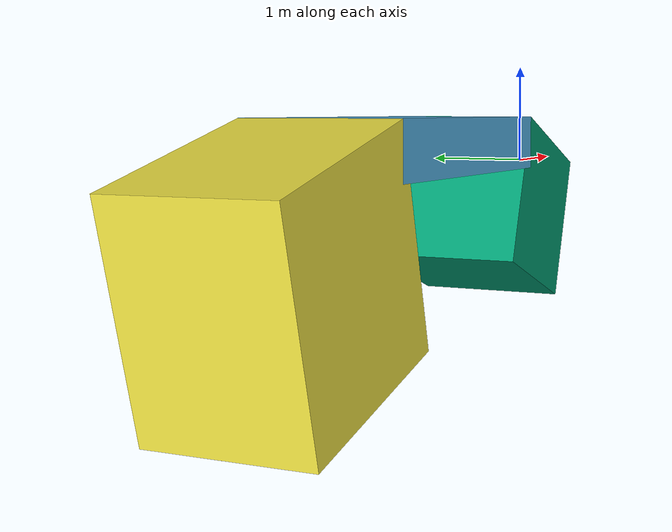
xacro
<?xml version="1.0"?>
<robot name="ramp_and_door" xmlns:xacro="http://www.ros.org/wiki/xacro">
    <gazebo>
        <static>true</static>
    </gazebo>

    <!-- Sizes from the rules of the cybathlon 2020 -->
    <xacro:property name="platform_height" default="0.48"/>
    <xacro:property name="platform_length" default="2.920"/>
    <xacro:property name="platform_width" default="1.4"/>
    <xacro:property name="ramp_up_length" default="1.403"/>
    <xacro:property name="ramp_down_length" default="1.854"/>
    <xacro:property name="distance_to_origin" default="0.4"/>

    <xacro:property name="parent_name" value="world"/>
    <xacro:property name="mu1" value="1.0"/>
    <xacro:property name="mu2" value="1.0"/>
    <!-- Minimum allowable depth before contact correction impulse is applied. -->
    <xacro:property name="min_depth" value="0.0005"/>

    <!-- Used for fixing robot to Gazebo 'base_link' -->
    <link name="${parent_name}"/>

    <!-- Links -->
    <link name="platform">
        <collision>
          <geometry>
            <box size="${platform_length} ${platform_width} ${platform_height}" />
          </geometry>
        </collision>

        <visual name='visual'>
          <geometry>
            <box size="${platform_length} ${platform_width} ${platform_height}" />
          </geometry>
        </visual>
        <inertial>
            <origin xyz="0 0 0" rpy="0 0 0"/>
            <mass value="1"/>
            <inertia
                    ixx="1"
                    ixy="1"
                    ixz="1"
                    iyy="1"
                    iyz="1"
                    izz="1" />
        </inertial>
    </link>

    <link name="ramp_up">
        <collision>
          <origin xyz="0 0 0" rpy="0 0 0"/>
          <geometry>
            <box size="${ramp_up_length} ${platform_width} ${ramp_up_length}" />
          </geometry>
        </collision>

        <visual name='visual'>
          <origin xyz="0 0 0" rpy="0 0 0"/>
          <geometry>
            <box size="${ramp_up_length} ${platform_width} ${ramp_up_length}" />
          </geometry>
        </visual>
    </link>

    <link name="ramp_down">
        <collision>
          <origin xyz="0 0 0" rpy="0 0 0"/>
          <geometry>
            <box size="${ramp_down_length} ${platform_width} ${ramp_down_length}" />
          </geometry>
        </collision>

        <visual name='visual'>
          <origin xyz="0 0 0" rpy="0 0 0"/>
          <geometry>
            <box size="${ramp_down_length} ${platform_width} ${ramp_down_length}" />
          </geometry>
        </visual>
    </link>

    <gazebo reference="platform">
        <mu1>${mu1}</mu1>
        <mu2>${mu2}</mu2>
        <minDepth>${min_depth}</minDepth>
    </gazebo>

    <gazebo reference="ramp_up">
        <mu1>${mu1}</mu1>
        <mu2>${mu2}</mu2>
        <minDepth>${min_depth}</minDepth>
    </gazebo>

    <gazebo reference="ramp_down">
        <mu1>${mu1}</mu1>
        <mu2>${mu2}</mu2>
        <minDepth>${min_depth}</minDepth>
    </gazebo>

    <!-- Joints -->

    <joint name="hip_1" type="fixed">
        <parent link="${parent_name}"/>
        <child link="platform"/>
        <origin xyz="-3.2 0 ${platform_height / 2}" rpy="0 0 0"/>
    </joint>

    <joint name="joint_1" type="fixed">
        <parent link="platform"/>
        <child link="ramp_up"/>
        <origin xyz="1.875 0 -0.659" rpy="0 0.35 0"/>
    </joint>

    <joint name="joint_2" type="fixed">
        <parent link="platform"/>
        <child link="ramp_down"/>
        <origin xyz="-2.115 0 -0.895" rpy="0 -0.26 0"/>
    </joint>

</robot>
